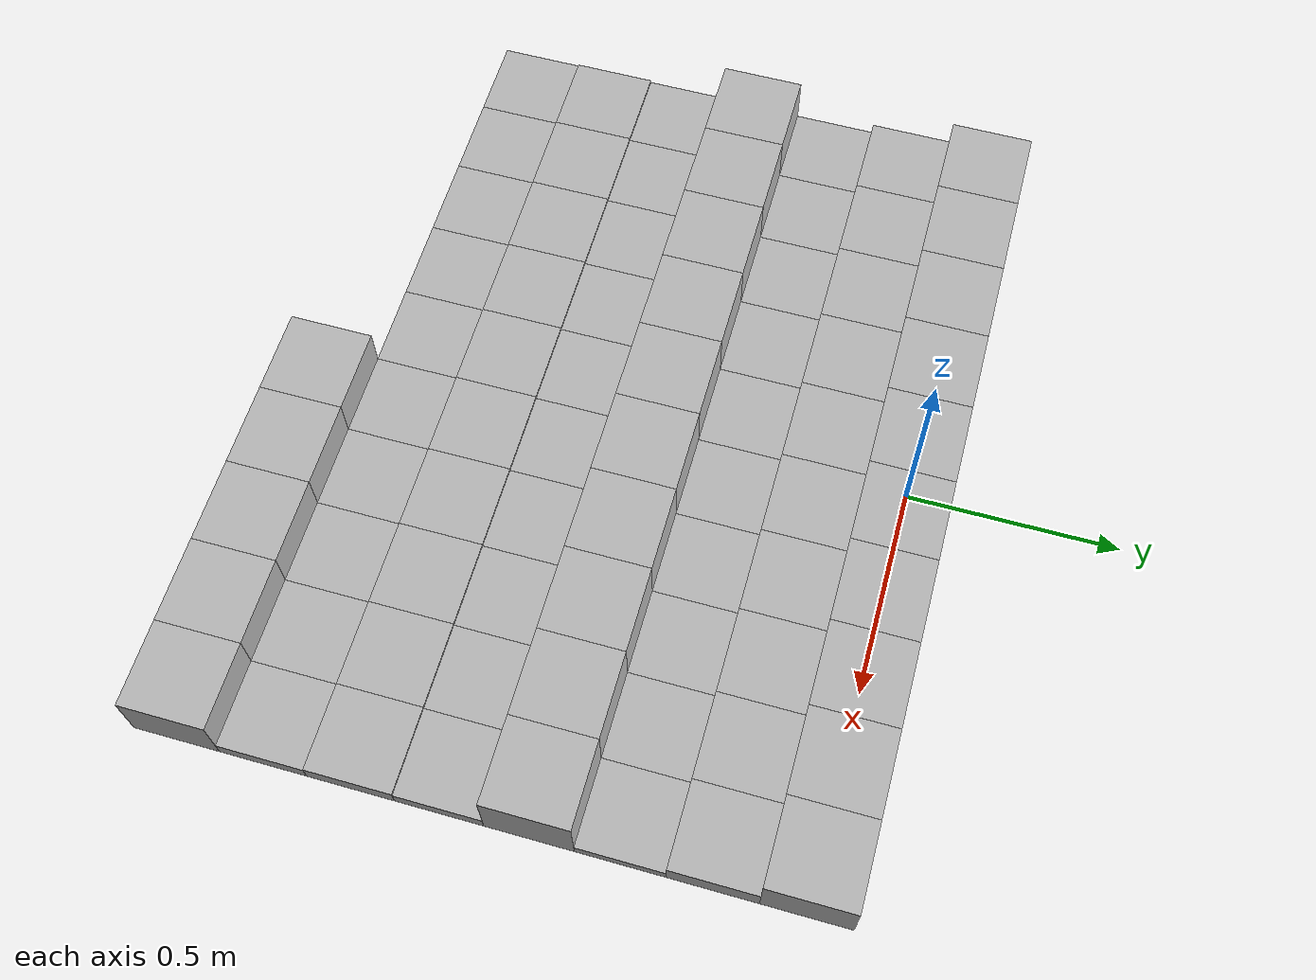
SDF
<sdf version="1.6">
 <model name="Terrain">
  <static>true</static>
  <link name="box_0_0">
   <pose>-0.9 0.0 0.0652673385334 0 0 0</pose>
   <inertial>
    <mass>1.0</mass>
    <inertia><ixx>0.0</ixx><ixy>0.0</ixy><ixz>0.0</ixz><iyy>0.0</iyy><iyz>0.0</iyz><izz>0.0</izz></inertia>
   </inertial>
   <collision name="collision"><geometry><box><size>0.2 0.2 0.130534677067</size></box></geometry></collision>
   <visual name="visual"><geometry><box><size>0.2 0.2 0.130534677067</size></box></geometry></visual>
  </link>
  <link name="box_0_1">
   <pose>-0.7 0.0 0.0652673385334 0 0 0</pose>
   <inertial>
    <mass>1.0</mass>
    <inertia><ixx>0.0</ixx><ixy>0.0</ixy><ixz>0.0</ixz><iyy>0.0</iyy><iyz>0.0</iyz><izz>0.0</izz></inertia>
   </inertial>
   <collision name="collision"><geometry><box><size>0.2 0.2 0.130534677067</size></box></geometry></collision>
   <visual name="visual"><geometry><box><size>0.2 0.2 0.130534677067</size></box></geometry></visual>
  </link>
  <link name="box_0_2">
   <pose>-0.5 0.0 0.0652673385334 0 0 0</pose>
   <inertial>
    <mass>1.0</mass>
    <inertia><ixx>0.0</ixx><ixy>0.0</ixy><ixz>0.0</ixz><iyy>0.0</iyy><iyz>0.0</iyz><izz>0.0</izz></inertia>
   </inertial>
   <collision name="collision"><geometry><box><size>0.2 0.2 0.130534677067</size></box></geometry></collision>
   <visual name="visual"><geometry><box><size>0.2 0.2 0.130534677067</size></box></geometry></visual>
  </link>
  <link name="box_0_3">
   <pose>-0.3 0.0 0.0652673385334 0 0 0</pose>
   <inertial>
    <mass>1.0</mass>
    <inertia><ixx>0.0</ixx><ixy>0.0</ixy><ixz>0.0</ixz><iyy>0.0</iyy><iyz>0.0</iyz><izz>0.0</izz></inertia>
   </inertial>
   <collision name="collision"><geometry><box><size>0.2 0.2 0.130534677067</size></box></geometry></collision>
   <visual name="visual"><geometry><box><size>0.2 0.2 0.130534677067</size></box></geometry></visual>
  </link>
  <link name="box_0_4">
   <pose>-0.1 0.0 0.0652673385334 0 0 0</pose>
   <inertial>
    <mass>1.0</mass>
    <inertia><ixx>0.0</ixx><ixy>0.0</ixy><ixz>0.0</ixz><iyy>0.0</iyy><iyz>0.0</iyz><izz>0.0</izz></inertia>
   </inertial>
   <collision name="collision"><geometry><box><size>0.2 0.2 0.130534677067</size></box></geometry></collision>
   <visual name="visual"><geometry><box><size>0.2 0.2 0.130534677067</size></box></geometry></visual>
  </link>
  <link name="box_0_5">
   <pose>0.1 0.0 0.0652673385334 0 0 0</pose>
   <inertial>
    <mass>1.0</mass>
    <inertia><ixx>0.0</ixx><ixy>0.0</ixy><ixz>0.0</ixz><iyy>0.0</iyy><iyz>0.0</iyz><izz>0.0</izz></inertia>
   </inertial>
   <collision name="collision"><geometry><box><size>0.2 0.2 0.130534677067</size></box></geometry></collision>
   <visual name="visual"><geometry><box><size>0.2 0.2 0.130534677067</size></box></geometry></visual>
  </link>
  <link name="box_0_6">
   <pose>0.3 0.0 0.0652673385334 0 0 0</pose>
   <inertial>
    <mass>1.0</mass>
    <inertia><ixx>0.0</ixx><ixy>0.0</ixy><ixz>0.0</ixz><iyy>0.0</iyy><iyz>0.0</iyz><izz>0.0</izz></inertia>
   </inertial>
   <collision name="collision"><geometry><box><size>0.2 0.2 0.130534677067</size></box></geometry></collision>
   <visual name="visual"><geometry><box><size>0.2 0.2 0.130534677067</size></box></geometry></visual>
  </link>
  <link name="box_0_7">
   <pose>0.5 0.0 0.0652673385334 0 0 0</pose>
   <inertial>
    <mass>1.0</mass>
    <inertia><ixx>0.0</ixx><ixy>0.0</ixy><ixz>0.0</ixz><iyy>0.0</iyy><iyz>0.0</iyz><izz>0.0</izz></inertia>
   </inertial>
   <collision name="collision"><geometry><box><size>0.2 0.2 0.130534677067</size></box></geometry></collision>
   <visual name="visual"><geometry><box><size>0.2 0.2 0.130534677067</size></box></geometry></visual>
  </link>
  <link name="box_0_8">
   <pose>0.7 0.0 0.0652673385334 0 0 0</pose>
   <inertial>
    <mass>1.0</mass>
    <inertia><ixx>0.0</ixx><ixy>0.0</ixy><ixz>0.0</ixz><iyy>0.0</iyy><iyz>0.0</iyz><izz>0.0</izz></inertia>
   </inertial>
   <collision name="collision"><geometry><box><size>0.2 0.2 0.130534677067</size></box></geometry></collision>
   <visual name="visual"><geometry><box><size>0.2 0.2 0.130534677067</size></box></geometry></visual>
  </link>
  <link name="box_0_9">
   <pose>0.9 0.0 0.0652673385334 0 0 0</pose>
   <inertial>
    <mass>1.0</mass>
    <inertia><ixx>0.0</ixx><ixy>0.0</ixy><ixz>0.0</ixz><iyy>0.0</iyy><iyz>0.0</iyz><izz>0.0</izz></inertia>
   </inertial>
   <collision name="collision"><geometry><box><size>0.2 0.2 0.130534677067</size></box></geometry></collision>
   <visual name="visual"><geometry><box><size>0.2 0.2 0.130534677067</size></box></geometry></visual>
  </link>
  <link name="box_1_0">
   <pose>-0.9 -0.2 0.0300714889659 0 0 0</pose>
   <inertial>
    <mass>1.0</mass>
    <inertia><ixx>0.0</ixx><ixy>0.0</ixy><ixz>0.0</ixz><iyy>0.0</iyy><iyz>0.0</iyz><izz>0.0</izz></inertia>
   </inertial>
   <collision name="collision"><geometry><box><size>0.2 0.2 0.0601429779318</size></box></geometry></collision>
   <visual name="visual"><geometry><box><size>0.2 0.2 0.0601429779318</size></box></geometry></visual>
  </link>
  <link name="box_1_1">
   <pose>-0.7 -0.2 0.0300714889659 0 0 0</pose>
   <inertial>
    <mass>1.0</mass>
    <inertia><ixx>0.0</ixx><ixy>0.0</ixy><ixz>0.0</ixz><iyy>0.0</iyy><iyz>0.0</iyz><izz>0.0</izz></inertia>
   </inertial>
   <collision name="collision"><geometry><box><size>0.2 0.2 0.0601429779318</size></box></geometry></collision>
   <visual name="visual"><geometry><box><size>0.2 0.2 0.0601429779318</size></box></geometry></visual>
  </link>
  <link name="box_1_2">
   <pose>-0.5 -0.2 0.0300714889659 0 0 0</pose>
   <inertial>
    <mass>1.0</mass>
    <inertia><ixx>0.0</ixx><ixy>0.0</ixy><ixz>0.0</ixz><iyy>0.0</iyy><iyz>0.0</iyz><izz>0.0</izz></inertia>
   </inertial>
   <collision name="collision"><geometry><box><size>0.2 0.2 0.0601429779318</size></box></geometry></collision>
   <visual name="visual"><geometry><box><size>0.2 0.2 0.0601429779318</size></box></geometry></visual>
  </link>
  <link name="box_1_3">
   <pose>-0.3 -0.2 0.0300714889659 0 0 0</pose>
   <inertial>
    <mass>1.0</mass>
    <inertia><ixx>0.0</ixx><ixy>0.0</ixy><ixz>0.0</ixz><iyy>0.0</iyy><iyz>0.0</iyz><izz>0.0</izz></inertia>
   </inertial>
   <collision name="collision"><geometry><box><size>0.2 0.2 0.0601429779318</size></box></geometry></collision>
   <visual name="visual"><geometry><box><size>0.2 0.2 0.0601429779318</size></box></geometry></visual>
  </link>
  <link name="box_1_4">
   <pose>-0.1 -0.2 0.0300714889659 0 0 0</pose>
   <inertial>
    <mass>1.0</mass>
    <inertia><ixx>0.0</ixx><ixy>0.0</ixy><ixz>0.0</ixz><iyy>0.0</iyy><iyz>0.0</iyz><izz>0.0</izz></inertia>
   </inertial>
   <collision name="collision"><geometry><box><size>0.2 0.2 0.0601429779318</size></box></geometry></collision>
   <visual name="visual"><geometry><box><size>0.2 0.2 0.0601429779318</size></box></geometry></visual>
  </link>
  <link name="box_1_5">
   <pose>0.1 -0.2 0.0300714889659 0 0 0</pose>
   <inertial>
    <mass>1.0</mass>
    <inertia><ixx>0.0</ixx><ixy>0.0</ixy><ixz>0.0</ixz><iyy>0.0</iyy><iyz>0.0</iyz><izz>0.0</izz></inertia>
   </inertial>
   <collision name="collision"><geometry><box><size>0.2 0.2 0.0601429779318</size></box></geometry></collision>
   <visual name="visual"><geometry><box><size>0.2 0.2 0.0601429779318</size></box></geometry></visual>
  </link>
  <link name="box_1_6">
   <pose>0.3 -0.2 0.0300714889659 0 0 0</pose>
   <inertial>
    <mass>1.0</mass>
    <inertia><ixx>0.0</ixx><ixy>0.0</ixy><ixz>0.0</ixz><iyy>0.0</iyy><iyz>0.0</iyz><izz>0.0</izz></inertia>
   </inertial>
   <collision name="collision"><geometry><box><size>0.2 0.2 0.0601429779318</size></box></geometry></collision>
   <visual name="visual"><geometry><box><size>0.2 0.2 0.0601429779318</size></box></geometry></visual>
  </link>
  <link name="box_1_7">
   <pose>0.5 -0.2 0.0300714889659 0 0 0</pose>
   <inertial>
    <mass>1.0</mass>
    <inertia><ixx>0.0</ixx><ixy>0.0</ixy><ixz>0.0</ixz><iyy>0.0</iyy><iyz>0.0</iyz><izz>0.0</izz></inertia>
   </inertial>
   <collision name="collision"><geometry><box><size>0.2 0.2 0.0601429779318</size></box></geometry></collision>
   <visual name="visual"><geometry><box><size>0.2 0.2 0.0601429779318</size></box></geometry></visual>
  </link>
  <link name="box_1_8">
   <pose>0.7 -0.2 0.0300714889659 0 0 0</pose>
   <inertial>
    <mass>1.0</mass>
    <inertia><ixx>0.0</ixx><ixy>0.0</ixy><ixz>0.0</ixz><iyy>0.0</iyy><iyz>0.0</iyz><izz>0.0</izz></inertia>
   </inertial>
   <collision name="collision"><geometry><box><size>0.2 0.2 0.0601429779318</size></box></geometry></collision>
   <visual name="visual"><geometry><box><size>0.2 0.2 0.0601429779318</size></box></geometry></visual>
  </link>
  <link name="box_1_9">
   <pose>0.9 -0.2 0.0300714889659 0 0 0</pose>
   <inertial>
    <mass>1.0</mass>
    <inertia><ixx>0.0</ixx><ixy>0.0</ixy><ixz>0.0</ixz><iyy>0.0</iyy><iyz>0.0</iyz><izz>0.0</izz></inertia>
   </inertial>
   <collision name="collision"><geometry><box><size>0.2 0.2 0.0601429779318</size></box></geometry></collision>
   <visual name="visual"><geometry><box><size>0.2 0.2 0.0601429779318</size></box></geometry></visual>
  </link>
  <link name="box_2_0">
   <pose>-0.9 -0.4 0.015270820116 0 0 0</pose>
   <inertial>
    <mass>1.0</mass>
    <inertia><ixx>0.0</ixx><ixy>0.0</ixy><ixz>0.0</ixz><iyy>0.0</iyy><iyz>0.0</iyz><izz>0.0</izz></inertia>
   </inertial>
   <collision name="collision"><geometry><box><size>0.2 0.2 0.0305416402319</size></box></geometry></collision>
   <visual name="visual"><geometry><box><size>0.2 0.2 0.0305416402319</size></box></geometry></visual>
  </link>
  <link name="box_2_1">
   <pose>-0.7 -0.4 0.015270820116 0 0 0</pose>
   <inertial>
    <mass>1.0</mass>
    <inertia><ixx>0.0</ixx><ixy>0.0</ixy><ixz>0.0</ixz><iyy>0.0</iyy><iyz>0.0</iyz><izz>0.0</izz></inertia>
   </inertial>
   <collision name="collision"><geometry><box><size>0.2 0.2 0.0305416402319</size></box></geometry></collision>
   <visual name="visual"><geometry><box><size>0.2 0.2 0.0305416402319</size></box></geometry></visual>
  </link>
  <link name="box_2_2">
   <pose>-0.5 -0.4 0.015270820116 0 0 0</pose>
   <inertial>
    <mass>1.0</mass>
    <inertia><ixx>0.0</ixx><ixy>0.0</ixy><ixz>0.0</ixz><iyy>0.0</iyy><iyz>0.0</iyz><izz>0.0</izz></inertia>
   </inertial>
   <collision name="collision"><geometry><box><size>0.2 0.2 0.0305416402319</size></box></geometry></collision>
   <visual name="visual"><geometry><box><size>0.2 0.2 0.0305416402319</size></box></geometry></visual>
  </link>
  <link name="box_2_3">
   <pose>-0.3 -0.4 0.015270820116 0 0 0</pose>
   <inertial>
    <mass>1.0</mass>
    <inertia><ixx>0.0</ixx><ixy>0.0</ixy><ixz>0.0</ixz><iyy>0.0</iyy><iyz>0.0</iyz><izz>0.0</izz></inertia>
   </inertial>
   <collision name="collision"><geometry><box><size>0.2 0.2 0.0305416402319</size></box></geometry></collision>
   <visual name="visual"><geometry><box><size>0.2 0.2 0.0305416402319</size></box></geometry></visual>
  </link>
  <link name="box_2_4">
   <pose>-0.1 -0.4 0.015270820116 0 0 0</pose>
   <inertial>
    <mass>1.0</mass>
    <inertia><ixx>0.0</ixx><ixy>0.0</ixy><ixz>0.0</ixz><iyy>0.0</iyy><iyz>0.0</iyz><izz>0.0</izz></inertia>
   </inertial>
   <collision name="collision"><geometry><box><size>0.2 0.2 0.0305416402319</size></box></geometry></collision>
   <visual name="visual"><geometry><box><size>0.2 0.2 0.0305416402319</size></box></geometry></visual>
  </link>
  <link name="box_2_5">
   <pose>0.1 -0.4 0.015270820116 0 0 0</pose>
   <inertial>
    <mass>1.0</mass>
    <inertia><ixx>0.0</ixx><ixy>0.0</ixy><ixz>0.0</ixz><iyy>0.0</iyy><iyz>0.0</iyz><izz>0.0</izz></inertia>
   </inertial>
   <collision name="collision"><geometry><box><size>0.2 0.2 0.0305416402319</size></box></geometry></collision>
   <visual name="visual"><geometry><box><size>0.2 0.2 0.0305416402319</size></box></geometry></visual>
  </link>
  <link name="box_2_6">
   <pose>0.3 -0.4 0.015270820116 0 0 0</pose>
   <inertial>
    <mass>1.0</mass>
    <inertia><ixx>0.0</ixx><ixy>0.0</ixy><ixz>0.0</ixz><iyy>0.0</iyy><iyz>0.0</iyz><izz>0.0</izz></inertia>
   </inertial>
   <collision name="collision"><geometry><box><size>0.2 0.2 0.0305416402319</size></box></geometry></collision>
   <visual name="visual"><geometry><box><size>0.2 0.2 0.0305416402319</size></box></geometry></visual>
  </link>
  <link name="box_2_7">
   <pose>0.5 -0.4 0.015270820116 0 0 0</pose>
   <inertial>
    <mass>1.0</mass>
    <inertia><ixx>0.0</ixx><ixy>0.0</ixy><ixz>0.0</ixz><iyy>0.0</iyy><iyz>0.0</iyz><izz>0.0</izz></inertia>
   </inertial>
   <collision name="collision"><geometry><box><size>0.2 0.2 0.0305416402319</size></box></geometry></collision>
   <visual name="visual"><geometry><box><size>0.2 0.2 0.0305416402319</size></box></geometry></visual>
  </link>
  <link name="box_2_8">
   <pose>0.7 -0.4 0.015270820116 0 0 0</pose>
   <inertial>
    <mass>1.0</mass>
    <inertia><ixx>0.0</ixx><ixy>0.0</ixy><ixz>0.0</ixz><iyy>0.0</iyy><iyz>0.0</iyz><izz>0.0</izz></inertia>
   </inertial>
   <collision name="collision"><geometry><box><size>0.2 0.2 0.0305416402319</size></box></geometry></collision>
   <visual name="visual"><geometry><box><size>0.2 0.2 0.0305416402319</size></box></geometry></visual>
  </link>
  <link name="box_2_9">
   <pose>0.9 -0.4 0.015270820116 0 0 0</pose>
   <inertial>
    <mass>1.0</mass>
    <inertia><ixx>0.0</ixx><ixy>0.0</ixy><ixz>0.0</ixz><iyy>0.0</iyy><iyz>0.0</iyz><izz>0.0</izz></inertia>
   </inertial>
   <collision name="collision"><geometry><box><size>0.2 0.2 0.0305416402319</size></box></geometry></collision>
   <visual name="visual"><geometry><box><size>0.2 0.2 0.0305416402319</size></box></geometry></visual>
  </link>
  <link name="box_3_0">
   <pose>-0.9 -0.6 0.0779446106329 0 0 0</pose>
   <inertial>
    <mass>1.0</mass>
    <inertia><ixx>0.0</ixx><ixy>0.0</ixy><ixz>0.0</ixz><iyy>0.0</iyy><iyz>0.0</iyz><izz>0.0</izz></inertia>
   </inertial>
   <collision name="collision"><geometry><box><size>0.2 0.2 0.155889221266</size></box></geometry></collision>
   <visual name="visual"><geometry><box><size>0.2 0.2 0.155889221266</size></box></geometry></visual>
  </link>
  <link name="box_3_1">
   <pose>-0.7 -0.6 0.0779446106329 0 0 0</pose>
   <inertial>
    <mass>1.0</mass>
    <inertia><ixx>0.0</ixx><ixy>0.0</ixy><ixz>0.0</ixz><iyy>0.0</iyy><iyz>0.0</iyz><izz>0.0</izz></inertia>
   </inertial>
   <collision name="collision"><geometry><box><size>0.2 0.2 0.155889221266</size></box></geometry></collision>
   <visual name="visual"><geometry><box><size>0.2 0.2 0.155889221266</size></box></geometry></visual>
  </link>
  <link name="box_3_2">
   <pose>-0.5 -0.6 0.0779446106329 0 0 0</pose>
   <inertial>
    <mass>1.0</mass>
    <inertia><ixx>0.0</ixx><ixy>0.0</ixy><ixz>0.0</ixz><iyy>0.0</iyy><iyz>0.0</iyz><izz>0.0</izz></inertia>
   </inertial>
   <collision name="collision"><geometry><box><size>0.2 0.2 0.155889221266</size></box></geometry></collision>
   <visual name="visual"><geometry><box><size>0.2 0.2 0.155889221266</size></box></geometry></visual>
  </link>
  <link name="box_3_3">
   <pose>-0.3 -0.6 0.0779446106329 0 0 0</pose>
   <inertial>
    <mass>1.0</mass>
    <inertia><ixx>0.0</ixx><ixy>0.0</ixy><ixz>0.0</ixz><iyy>0.0</iyy><iyz>0.0</iyz><izz>0.0</izz></inertia>
   </inertial>
   <collision name="collision"><geometry><box><size>0.2 0.2 0.155889221266</size></box></geometry></collision>
   <visual name="visual"><geometry><box><size>0.2 0.2 0.155889221266</size></box></geometry></visual>
  </link>
  <link name="box_3_4">
   <pose>-0.1 -0.6 0.0779446106329 0 0 0</pose>
   <inertial>
    <mass>1.0</mass>
    <inertia><ixx>0.0</ixx><ixy>0.0</ixy><ixz>0.0</ixz><iyy>0.0</iyy><iyz>0.0</iyz><izz>0.0</izz></inertia>
   </inertial>
   <collision name="collision"><geometry><box><size>0.2 0.2 0.155889221266</size></box></geometry></collision>
   <visual name="visual"><geometry><box><size>0.2 0.2 0.155889221266</size></box></geometry></visual>
  </link>
  <link name="box_3_5">
   <pose>0.1 -0.6 0.0779446106329 0 0 0</pose>
   <inertial>
    <mass>1.0</mass>
    <inertia><ixx>0.0</ixx><ixy>0.0</ixy><ixz>0.0</ixz><iyy>0.0</iyy><iyz>0.0</iyz><izz>0.0</izz></inertia>
   </inertial>
   <collision name="collision"><geometry><box><size>0.2 0.2 0.155889221266</size></box></geometry></collision>
   <visual name="visual"><geometry><box><size>0.2 0.2 0.155889221266</size></box></geometry></visual>
  </link>
  <link name="box_3_6">
   <pose>0.3 -0.6 0.0779446106329 0 0 0</pose>
   <inertial>
    <mass>1.0</mass>
    <inertia><ixx>0.0</ixx><ixy>0.0</ixy><ixz>0.0</ixz><iyy>0.0</iyy><iyz>0.0</iyz><izz>0.0</izz></inertia>
   </inertial>
   <collision name="collision"><geometry><box><size>0.2 0.2 0.155889221266</size></box></geometry></collision>
   <visual name="visual"><geometry><box><size>0.2 0.2 0.155889221266</size></box></geometry></visual>
  </link>
  <link name="box_3_7">
   <pose>0.5 -0.6 0.0779446106329 0 0 0</pose>
   <inertial>
    <mass>1.0</mass>
    <inertia><ixx>0.0</ixx><ixy>0.0</ixy><ixz>0.0</ixz><iyy>0.0</iyy><iyz>0.0</iyz><izz>0.0</izz></inertia>
   </inertial>
   <collision name="collision"><geometry><box><size>0.2 0.2 0.155889221266</size></box></geometry></collision>
   <visual name="visual"><geometry><box><size>0.2 0.2 0.155889221266</size></box></geometry></visual>
  </link>
  <link name="box_3_8">
   <pose>0.7 -0.6 0.0779446106329 0 0 0</pose>
   <inertial>
    <mass>1.0</mass>
    <inertia><ixx>0.0</ixx><ixy>0.0</ixy><ixz>0.0</ixz><iyy>0.0</iyy><iyz>0.0</iyz><izz>0.0</izz></inertia>
   </inertial>
   <collision name="collision"><geometry><box><size>0.2 0.2 0.155889221266</size></box></geometry></collision>
   <visual name="visual"><geometry><box><size>0.2 0.2 0.155889221266</size></box></geometry></visual>
  </link>
  <link name="box_3_9">
   <pose>0.9 -0.6 0.0779446106329 0 0 0</pose>
   <inertial>
    <mass>1.0</mass>
    <inertia><ixx>0.0</ixx><ixy>0.0</ixy><ixz>0.0</ixz><iyy>0.0</iyy><iyz>0.0</iyz><izz>0.0</izz></inertia>
   </inertial>
   <collision name="collision"><geometry><box><size>0.2 0.2 0.155889221266</size></box></geometry></collision>
   <visual name="visual"><geometry><box><size>0.2 0.2 0.155889221266</size></box></geometry></visual>
  </link>
  <link name="box_4_0">
   <pose>-0.9 -0.8 0.0185343047509 0 0 0</pose>
   <inertial>
    <mass>1.0</mass>
    <inertia><ixx>0.0</ixx><ixy>0.0</ixy><ixz>0.0</ixz><iyy>0.0</iyy><iyz>0.0</iyz><izz>0.0</izz></inertia>
   </inertial>
   <collision name="collision"><geometry><box><size>0.2 0.2 0.0370686095018</size></box></geometry></collision>
   <visual name="visual"><geometry><box><size>0.2 0.2 0.0370686095018</size></box></geometry></visual>
  </link>
  <link name="box_4_1">
   <pose>-0.7 -0.8 0.0185343047509 0 0 0</pose>
   <inertial>
    <mass>1.0</mass>
    <inertia><ixx>0.0</ixx><ixy>0.0</ixy><ixz>0.0</ixz><iyy>0.0</iyy><iyz>0.0</iyz><izz>0.0</izz></inertia>
   </inertial>
   <collision name="collision"><geometry><box><size>0.2 0.2 0.0370686095018</size></box></geometry></collision>
   <visual name="visual"><geometry><box><size>0.2 0.2 0.0370686095018</size></box></geometry></visual>
  </link>
  <link name="box_4_2">
   <pose>-0.5 -0.8 0.0185343047509 0 0 0</pose>
   <inertial>
    <mass>1.0</mass>
    <inertia><ixx>0.0</ixx><ixy>0.0</ixy><ixz>0.0</ixz><iyy>0.0</iyy><iyz>0.0</iyz><izz>0.0</izz></inertia>
   </inertial>
   <collision name="collision"><geometry><box><size>0.2 0.2 0.0370686095018</size></box></geometry></collision>
   <visual name="visual"><geometry><box><size>0.2 0.2 0.0370686095018</size></box></geometry></visual>
  </link>
  <link name="box_4_3">
   <pose>-0.3 -0.8 0.0185343047509 0 0 0</pose>
   <inertial>
    <mass>1.0</mass>
    <inertia><ixx>0.0</ixx><ixy>0.0</ixy><ixz>0.0</ixz><iyy>0.0</iyy><iyz>0.0</iyz><izz>0.0</izz></inertia>
   </inertial>
   <collision name="collision"><geometry><box><size>0.2 0.2 0.0370686095018</size></box></geometry></collision>
   <visual name="visual"><geometry><box><size>0.2 0.2 0.0370686095018</size></box></geometry></visual>
  </link>
  <link name="box_4_4">
   <pose>-0.1 -0.8 0.0185343047509 0 0 0</pose>
   <inertial>
    <mass>1.0</mass>
    <inertia><ixx>0.0</ixx><ixy>0.0</ixy><ixz>0.0</ixz><iyy>0.0</iyy><iyz>0.0</iyz><izz>0.0</izz></inertia>
   </inertial>
   <collision name="collision"><geometry><box><size>0.2 0.2 0.0370686095018</size></box></geometry></collision>
   <visual name="visual"><geometry><box><size>0.2 0.2 0.0370686095018</size></box></geometry></visual>
  </link>
  <link name="box_4_5">
   <pose>0.1 -0.8 0.0185343047509 0 0 0</pose>
   <inertial>
    <mass>1.0</mass>
    <inertia><ixx>0.0</ixx><ixy>0.0</ixy><ixz>0.0</ixz><iyy>0.0</iyy><iyz>0.0</iyz><izz>0.0</izz></inertia>
   </inertial>
   <collision name="collision"><geometry><box><size>0.2 0.2 0.0370686095018</size></box></geometry></collision>
   <visual name="visual"><geometry><box><size>0.2 0.2 0.0370686095018</size></box></geometry></visual>
  </link>
  <link name="box_4_6">
   <pose>0.3 -0.8 0.0185343047509 0 0 0</pose>
   <inertial>
    <mass>1.0</mass>
    <inertia><ixx>0.0</ixx><ixy>0.0</ixy><ixz>0.0</ixz><iyy>0.0</iyy><iyz>0.0</iyz><izz>0.0</izz></inertia>
   </inertial>
   <collision name="collision"><geometry><box><size>0.2 0.2 0.0370686095018</size></box></geometry></collision>
   <visual name="visual"><geometry><box><size>0.2 0.2 0.0370686095018</size></box></geometry></visual>
  </link>
  <link name="box_4_7">
   <pose>0.5 -0.8 0.0185343047509 0 0 0</pose>
   <inertial>
    <mass>1.0</mass>
    <inertia><ixx>0.0</ixx><ixy>0.0</ixy><ixz>0.0</ixz><iyy>0.0</iyy><iyz>0.0</iyz><izz>0.0</izz></inertia>
   </inertial>
   <collision name="collision"><geometry><box><size>0.2 0.2 0.0370686095018</size></box></geometry></collision>
   <visual name="visual"><geometry><box><size>0.2 0.2 0.0370686095018</size></box></geometry></visual>
  </link>
  <link name="box_4_8">
   <pose>0.7 -0.8 0.0185343047509 0 0 0</pose>
   <inertial>
    <mass>1.0</mass>
    <inertia><ixx>0.0</ixx><ixy>0.0</ixy><ixz>0.0</ixz><iyy>0.0</iyy><iyz>0.0</iyz><izz>0.0</izz></inertia>
   </inertial>
   <collision name="collision"><geometry><box><size>0.2 0.2 0.0370686095018</size></box></geometry></collision>
   <visual name="visual"><geometry><box><size>0.2 0.2 0.0370686095018</size></box></geometry></visual>
  </link>
  <link name="box_4_9">
   <pose>0.9 -0.8 0.0185343047509 0 0 0</pose>
   <inertial>
    <mass>1.0</mass>
    <inertia><ixx>0.0</ixx><ixy>0.0</ixy><ixz>0.0</ixz><iyy>0.0</iyy><iyz>0.0</iyz><izz>0.0</izz></inertia>
   </inertial>
   <collision name="collision"><geometry><box><size>0.2 0.2 0.0370686095018</size></box></geometry></collision>
   <visual name="visual"><geometry><box><size>0.2 0.2 0.0370686095018</size></box></geometry></visual>
  </link>
  <link name="box_5_0">
   <pose>-0.9 -1.0 0.0218765119779 0 0 0</pose>
   <inertial>
    <mass>1.0</mass>
    <inertia><ixx>0.0</ixx><ixy>0.0</ixy><ixz>0.0</ixz><iyy>0.0</iyy><iyz>0.0</iyz><izz>0.0</izz></inertia>
   </inertial>
   <collision name="collision"><geometry><box><size>0.2 0.2 0.0437530239558</size></box></geometry></collision>
   <visual name="visual"><geometry><box><size>0.2 0.2 0.0437530239558</size></box></geometry></visual>
  </link>
  <link name="box_5_1">
   <pose>-0.7 -1.0 0.0218765119779 0 0 0</pose>
   <inertial>
    <mass>1.0</mass>
    <inertia><ixx>0.0</ixx><ixy>0.0</ixy><ixz>0.0</ixz><iyy>0.0</iyy><iyz>0.0</iyz><izz>0.0</izz></inertia>
   </inertial>
   <collision name="collision"><geometry><box><size>0.2 0.2 0.0437530239558</size></box></geometry></collision>
   <visual name="visual"><geometry><box><size>0.2 0.2 0.0437530239558</size></box></geometry></visual>
  </link>
  <link name="box_5_2">
   <pose>-0.5 -1.0 0.0218765119779 0 0 0</pose>
   <inertial>
    <mass>1.0</mass>
    <inertia><ixx>0.0</ixx><ixy>0.0</ixy><ixz>0.0</ixz><iyy>0.0</iyy><iyz>0.0</iyz><izz>0.0</izz></inertia>
   </inertial>
   <collision name="collision"><geometry><box><size>0.2 0.2 0.0437530239558</size></box></geometry></collision>
   <visual name="visual"><geometry><box><size>0.2 0.2 0.0437530239558</size></box></geometry></visual>
  </link>
  <link name="box_5_3">
   <pose>-0.3 -1.0 0.0218765119779 0 0 0</pose>
   <inertial>
    <mass>1.0</mass>
    <inertia><ixx>0.0</ixx><ixy>0.0</ixy><ixz>0.0</ixz><iyy>0.0</iyy><iyz>0.0</iyz><izz>0.0</izz></inertia>
   </inertial>
   <collision name="collision"><geometry><box><size>0.2 0.2 0.0437530239558</size></box></geometry></collision>
   <visual name="visual"><geometry><box><size>0.2 0.2 0.0437530239558</size></box></geometry></visual>
  </link>
  <link name="box_5_4">
   <pose>-0.1 -1.0 0.0218765119779 0 0 0</pose>
   <inertial>
    <mass>1.0</mass>
    <inertia><ixx>0.0</ixx><ixy>0.0</ixy><ixz>0.0</ixz><iyy>0.0</iyy><iyz>0.0</iyz><izz>0.0</izz></inertia>
   </inertial>
   <collision name="collision"><geometry><box><size>0.2 0.2 0.0437530239558</size></box></geometry></collision>
   <visual name="visual"><geometry><box><size>0.2 0.2 0.0437530239558</size></box></geometry></visual>
  </link>
  <link name="box_5_5">
   <pose>0.1 -1.0 0.0218765119779 0 0 0</pose>
   <inertial>
    <mass>1.0</mass>
    <inertia><ixx>0.0</ixx><ixy>0.0</ixy><ixz>0.0</ixz><iyy>0.0</iyy><iyz>0.0</iyz><izz>0.0</izz></inertia>
   </inertial>
   <collision name="collision"><geometry><box><size>0.2 0.2 0.0437530239558</size></box></geometry></collision>
   <visual name="visual"><geometry><box><size>0.2 0.2 0.0437530239558</size></box></geometry></visual>
  </link>
  <link name="box_5_6">
   <pose>0.3 -1.0 0.0218765119779 0 0 0</pose>
   <inertial>
    <mass>1.0</mass>
    <inertia><ixx>0.0</ixx><ixy>0.0</ixy><ixz>0.0</ixz><iyy>0.0</iyy><iyz>0.0</iyz><izz>0.0</izz></inertia>
   </inertial>
   <collision name="collision"><geometry><box><size>0.2 0.2 0.0437530239558</size></box></geometry></collision>
   <visual name="visual"><geometry><box><size>0.2 0.2 0.0437530239558</size></box></geometry></visual>
  </link>
  <link name="box_5_7">
   <pose>0.5 -1.0 0.0218765119779 0 0 0</pose>
   <inertial>
    <mass>1.0</mass>
    <inertia><ixx>0.0</ixx><ixy>0.0</ixy><ixz>0.0</ixz><iyy>0.0</iyy><iyz>0.0</iyz><izz>0.0</izz></inertia>
   </inertial>
   <collision name="collision"><geometry><box><size>0.2 0.2 0.0437530239558</size></box></geometry></collision>
   <visual name="visual"><geometry><box><size>0.2 0.2 0.0437530239558</size></box></geometry></visual>
  </link>
  <link name="box_5_8">
   <pose>0.7 -1.0 0.0218765119779 0 0 0</pose>
   <inertial>
    <mass>1.0</mass>
    <inertia><ixx>0.0</ixx><ixy>0.0</ixy><ixz>0.0</ixz><iyy>0.0</iyy><iyz>0.0</iyz><izz>0.0</izz></inertia>
   </inertial>
   <collision name="collision"><geometry><box><size>0.2 0.2 0.0437530239558</size></box></geometry></collision>
   <visual name="visual"><geometry><box><size>0.2 0.2 0.0437530239558</size></box></geometry></visual>
  </link>
  <link name="box_5_9">
   <pose>0.9 -1.0 0.0218765119779 0 0 0</pose>
   <inertial>
    <mass>1.0</mass>
    <inertia><ixx>0.0</ixx><ixy>0.0</ixy><ixz>0.0</ixz><iyy>0.0</iyy><iyz>0.0</iyz><izz>0.0</izz></inertia>
   </inertial>
   <collision name="collision"><geometry><box><size>0.2 0.2 0.0437530239558</size></box></geometry></collision>
   <visual name="visual"><geometry><box><size>0.2 0.2 0.0437530239558</size></box></geometry></visual>
  </link>
  <link name="box_6_0">
   <pose>-0.9 -1.2 0.0196943453716 0 0 0</pose>
   <inertial>
    <mass>1.0</mass>
    <inertia><ixx>0.0</ixx><ixy>0.0</ixy><ixz>0.0</ixz><iyy>0.0</iyy><iyz>0.0</iyz><izz>0.0</izz></inertia>
   </inertial>
   <collision name="collision"><geometry><box><size>0.2 0.2 0.0393886907431</size></box></geometry></collision>
   <visual name="visual"><geometry><box><size>0.2 0.2 0.0393886907431</size></box></geometry></visual>
  </link>
  <link name="box_6_1">
   <pose>-0.7 -1.2 0.0196943453716 0 0 0</pose>
   <inertial>
    <mass>1.0</mass>
    <inertia><ixx>0.0</ixx><ixy>0.0</ixy><ixz>0.0</ixz><iyy>0.0</iyy><iyz>0.0</iyz><izz>0.0</izz></inertia>
   </inertial>
   <collision name="collision"><geometry><box><size>0.2 0.2 0.0393886907431</size></box></geometry></collision>
   <visual name="visual"><geometry><box><size>0.2 0.2 0.0393886907431</size></box></geometry></visual>
  </link>
  <link name="box_6_2">
   <pose>-0.5 -1.2 0.0196943453716 0 0 0</pose>
   <inertial>
    <mass>1.0</mass>
    <inertia><ixx>0.0</ixx><ixy>0.0</ixy><ixz>0.0</ixz><iyy>0.0</iyy><iyz>0.0</iyz><izz>0.0</izz></inertia>
   </inertial>
   <collision name="collision"><geometry><box><size>0.2 0.2 0.0393886907431</size></box></geometry></collision>
   <visual name="visual"><geometry><box><size>0.2 0.2 0.0393886907431</size></box></geometry></visual>
  </link>
  <link name="box_6_3">
   <pose>-0.3 -1.2 0.0196943453716 0 0 0</pose>
   <inertial>
    <mass>1.0</mass>
    <inertia><ixx>0.0</ixx><ixy>0.0</ixy><ixz>0.0</ixz><iyy>0.0</iyy><iyz>0.0</iyz><izz>0.0</izz></inertia>
   </inertial>
   <collision name="collision"><geometry><box><size>0.2 0.2 0.0393886907431</size></box></geometry></collision>
   <visual name="visual"><geometry><box><size>0.2 0.2 0.0393886907431</size></box></geometry></visual>
  </link>
  <link name="box_6_4">
   <pose>-0.1 -1.2 0.0196943453716 0 0 0</pose>
   <inertial>
    <mass>1.0</mass>
    <inertia><ixx>0.0</ixx><ixy>0.0</ixy><ixz>0.0</ixz><iyy>0.0</iyy><iyz>0.0</iyz><izz>0.0</izz></inertia>
   </inertial>
   <collision name="collision"><geometry><box><size>0.2 0.2 0.0393886907431</size></box></geometry></collision>
   <visual name="visual"><geometry><box><size>0.2 0.2 0.0393886907431</size></box></geometry></visual>
  </link>
  <link name="box_6_5">
   <pose>0.1 -1.2 0.0196943453716 0 0 0</pose>
   <inertial>
    <mass>1.0</mass>
    <inertia><ixx>0.0</ixx><ixy>0.0</ixy><ixz>0.0</ixz><iyy>0.0</iyy><iyz>0.0</iyz><izz>0.0</izz></inertia>
   </inertial>
   <collision name="collision"><geometry><box><size>0.2 0.2 0.0393886907431</size></box></geometry></collision>
   <visual name="visual"><geometry><box><size>0.2 0.2 0.0393886907431</size></box></geometry></visual>
  </link>
  <link name="box_6_6">
   <pose>0.3 -1.2 0.0196943453716 0 0 0</pose>
   <inertial>
    <mass>1.0</mass>
    <inertia><ixx>0.0</ixx><ixy>0.0</ixy><ixz>0.0</ixz><iyy>0.0</iyy><iyz>0.0</iyz><izz>0.0</izz></inertia>
   </inertial>
   <collision name="collision"><geometry><box><size>0.2 0.2 0.0393886907431</size></box></geometry></collision>
   <visual name="visual"><geometry><box><size>0.2 0.2 0.0393886907431</size></box></geometry></visual>
  </link>
  <link name="box_6_7">
   <pose>0.5 -1.2 0.0196943453716 0 0 0</pose>
   <inertial>
    <mass>1.0</mass>
    <inertia><ixx>0.0</ixx><ixy>0.0</ixy><ixz>0.0</ixz><iyy>0.0</iyy><iyz>0.0</iyz><izz>0.0</izz></inertia>
   </inertial>
   <collision name="collision"><geometry><box><size>0.2 0.2 0.0393886907431</size></box></geometry></collision>
   <visual name="visual"><geometry><box><size>0.2 0.2 0.0393886907431</size></box></geometry></visual>
  </link>
  <link name="box_6_8">
   <pose>0.7 -1.2 0.0196943453716 0 0 0</pose>
   <inertial>
    <mass>1.0</mass>
    <inertia><ixx>0.0</ixx><ixy>0.0</ixy><ixz>0.0</ixz><iyy>0.0</iyy><iyz>0.0</iyz><izz>0.0</izz></inertia>
   </inertial>
   <collision name="collision"><geometry><box><size>0.2 0.2 0.0393886907431</size></box></geometry></collision>
   <visual name="visual"><geometry><box><size>0.2 0.2 0.0393886907431</size></box></geometry></visual>
  </link>
  <link name="box_6_9">
   <pose>0.9 -1.2 0.0196943453716 0 0 0</pose>
   <inertial>
    <mass>1.0</mass>
    <inertia><ixx>0.0</ixx><ixy>0.0</ixy><ixz>0.0</ixz><iyy>0.0</iyy><iyz>0.0</iyz><izz>0.0</izz></inertia>
   </inertial>
   <collision name="collision"><geometry><box><size>0.2 0.2 0.0393886907431</size></box></geometry></collision>
   <visual name="visual"><geometry><box><size>0.2 0.2 0.0393886907431</size></box></geometry></visual>
  </link>
  <link name="box_7_5">
   <pose>0.1 -1.4 0.0721820459374 0 0 0</pose>
   <inertial>
    <mass>1.0</mass>
    <inertia><ixx>0.0</ixx><ixy>0.0</ixy><ixz>0.0</ixz><iyy>0.0</iyy><iyz>0.0</iyz><izz>0.0</izz></inertia>
   </inertial>
   <collision name="collision"><geometry><box><size>0.2 0.2 0.144364091875</size></box></geometry></collision>
   <visual name="visual"><geometry><box><size>0.2 0.2 0.144364091875</size></box></geometry></visual>
  </link>
  <link name="box_7_6">
   <pose>0.3 -1.4 0.0721820459374 0 0 0</pose>
   <inertial>
    <mass>1.0</mass>
    <inertia><ixx>0.0</ixx><ixy>0.0</ixy><ixz>0.0</ixz><iyy>0.0</iyy><iyz>0.0</iyz><izz>0.0</izz></inertia>
   </inertial>
   <collision name="collision"><geometry><box><size>0.2 0.2 0.144364091875</size></box></geometry></collision>
   <visual name="visual"><geometry><box><size>0.2 0.2 0.144364091875</size></box></geometry></visual>
  </link>
  <link name="box_7_7">
   <pose>0.5 -1.4 0.0721820459374 0 0 0</pose>
   <inertial>
    <mass>1.0</mass>
    <inertia><ixx>0.0</ixx><ixy>0.0</ixy><ixz>0.0</ixz><iyy>0.0</iyy><iyz>0.0</iyz><izz>0.0</izz></inertia>
   </inertial>
   <collision name="collision"><geometry><box><size>0.2 0.2 0.144364091875</size></box></geometry></collision>
   <visual name="visual"><geometry><box><size>0.2 0.2 0.144364091875</size></box></geometry></visual>
  </link>
  <link name="box_7_8">
   <pose>0.7 -1.4 0.0721820459374 0 0 0</pose>
   <inertial>
    <mass>1.0</mass>
    <inertia><ixx>0.0</ixx><ixy>0.0</ixy><ixz>0.0</ixz><iyy>0.0</iyy><iyz>0.0</iyz><izz>0.0</izz></inertia>
   </inertial>
   <collision name="collision"><geometry><box><size>0.2 0.2 0.144364091875</size></box></geometry></collision>
   <visual name="visual"><geometry><box><size>0.2 0.2 0.144364091875</size></box></geometry></visual>
  </link>
  <link name="box_7_9">
   <pose>0.9 -1.4 0.0721820459374 0 0 0</pose>
   <inertial>
    <mass>1.0</mass>
    <inertia><ixx>0.0</ixx><ixy>0.0</ixy><ixz>0.0</ixz><iyy>0.0</iyy><iyz>0.0</iyz><izz>0.0</izz></inertia>
   </inertial>
   <collision name="collision"><geometry><box><size>0.2 0.2 0.144364091875</size></box></geometry></collision>
   <visual name="visual"><geometry><box><size>0.2 0.2 0.144364091875</size></box></geometry></visual>
  </link>
 </model>
</sdf>
